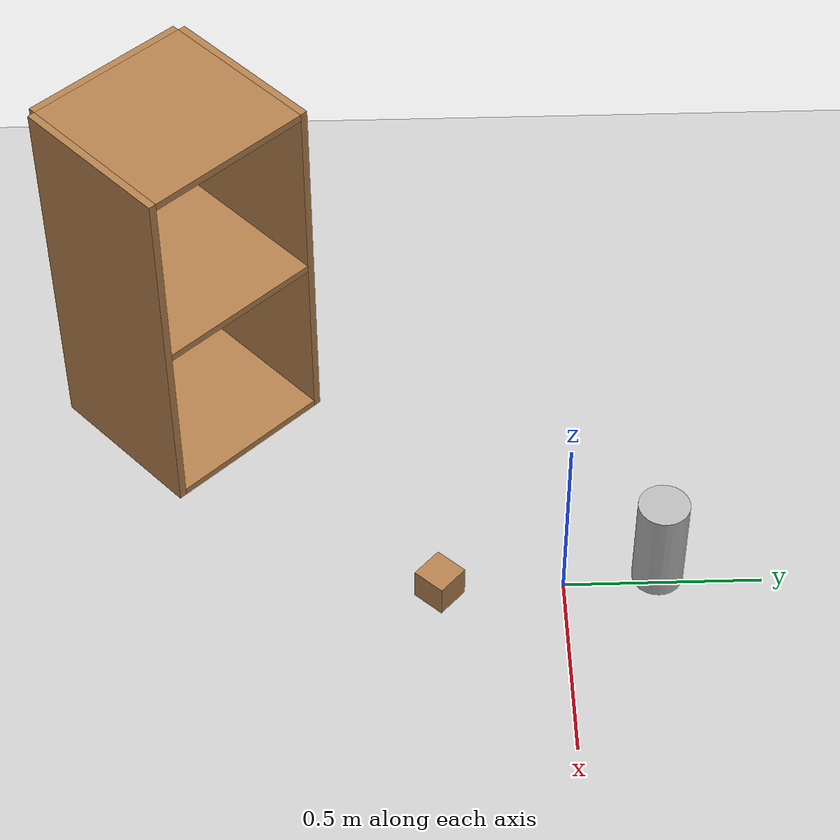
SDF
<sdf version="1.6">
 <world name="default">
  <light name="sun" type="directional">
   <pose>0 0 10 0 -0 0</pose>
   <diffuse>0.8 0.8 0.8 1</diffuse>
   <specular>0.2 0.2 0.2 1</specular>
   <attenuation>
    <range>1000</range>
    <constant>0.9</constant>
    <linear>0.01</linear>
    <quadratic>0.001</quadratic>
   </attenuation>
   <direction>-0.5 0.1 -0.9</direction>
  </light>
  <model name="ground_plane">
   <static>1</static>
   <link name="link">
    <collision name="collision">
     <geometry><plane><normal>0 0 1</normal><size>100 100</size></plane></geometry>
     <surface>
      <contact><collide_bitmask>65535</collide_bitmask></contact>
      <friction><ode><mu>100</mu><mu2>50</mu2></ode></friction>
     </surface>
    </collision>
    <visual name="visual">
     <cast_shadows>0</cast_shadows>
     <geometry><plane><normal>0 0 1</normal><size>100 100</size></plane></geometry>
     <material>
      <script><uri>file://media/materials/scripts/gazebo.material</uri><name>Gazebo/Grey</name></script>
     </material>
    </visual>
   </link>
  </model>
  <gravity>0 0 -9.8</gravity>
  <magnetic_field>6e-06 2.3e-05 -4.2e-05</magnetic_field>
  <atmosphere type="adiabatic"/>
  <physics name="default_physics" default="0" type="ode">
   <max_step_size>0.001</max_step_size>
   <real_time_factor>1</real_time_factor>
   <real_time_update_rate>1000</real_time_update_rate>
  </physics>
  <scene><ambient>0.4 0.4 0.4 1</ambient><background>0.7 0.7 0.7 1</background><shadows>1</shadows></scene>
  <audio><device>default</device></audio>
  <spherical_coordinates>
   <surface_model>EARTH_WGS84</surface_model>
   <latitude_deg>0</latitude_deg>
   <longitude_deg>0</longitude_deg>
   <elevation>0</elevation>
   <heading_deg>0</heading_deg>
  </spherical_coordinates>
  <model name="cabinet">
   <static>1</static>
   <link name="cabinet_bottom_plate">
    <inertial>
     <pose>0 0 -1 0 -0 0</pose>
     <inertia><ixx>2.05</ixx><ixy>0</ixy><ixz>0</ixz><iyy>2.05</iyy><iyz>0</iyz><izz>2.05</izz></inertia>
     <mass>25</mass>
    </inertial>
    <collision name="cabinet_bottom_plate_geom">
     <pose>0 0 0.01 0 -0 0</pose>
     <geometry><box><size>0.45 0.45 0.02</size></box></geometry>
    </collision>
    <visual name="cabinet_bottom_plate_geom_visual">
     <pose>0 0 0.01 0 -0 0</pose>
     <geometry><box><size>0.45 0.45 0.02</size></box></geometry>
     <material>
      <script><uri>file://media/materials/scripts/gazebo.material</uri><name>Gazebo/Wood</name></script>
     </material>
    </visual>
    <collision name="cabinet_bottom_plate_geom_cabinet_back_plate">
     <pose>0.235 0 0.51 0 -0 0</pose>
     <geometry><box><size>0.02 0.45 1.02</size></box></geometry>
    </collision>
    <visual name="cabinet_bottom_plate_geom_cabinet_back_plate_visual">
     <pose>0.235 0 0.51 0 -0 0</pose>
     <geometry><box><size>0.02 0.45 1.02</size></box></geometry>
     <material>
      <script><uri>file://media/materials/scripts/gazebo.material</uri><name>Gazebo/Wood</name></script>
     </material>
    </visual>
    <collision name="cabinet_bottom_plate_geom_cabinet_left_plate">
     <pose>0 0.235 0.51 0 -0 0</pose>
     <geometry><box><size>0.45 0.02 1.02</size></box></geometry>
    </collision>
    <visual name="cabinet_bottom_plate_geom_cabinet_left_plate_visual">
     <pose>0 0.235 0.51 0 -0 0</pose>
     <geometry><box><size>0.45 0.02 1.02</size></box></geometry>
     <material>
      <script><uri>file://media/materials/scripts/gazebo.material</uri><name>Gazebo/Wood</name></script>
     </material>
    </visual>
    <collision name="cabinet_bottom_plate_geom_cabinet_middle_plate">
     <pose>0 0 0.51 0 -0 0</pose>
     <geometry><box><size>0.45 0.45 0.02</size></box></geometry>
    </collision>
    <visual name="cabinet_bottom_plate_geom_cabinet_middle_plate_visual">
     <pose>0 0 0.51 0 -0 0</pose>
     <geometry><box><size>0.45 0.45 0.02</size></box></geometry>
     <material>
      <script><uri>file://media/materials/scripts/gazebo.material</uri><name>Gazebo/Wood</name></script>
     </material>
    </visual>
    <collision name="cabinet_bottom_plate_geom_cabinet_right_plate">
     <pose>0 -0.235 0.51 0 -0 0</pose>
     <geometry><box><size>0.45 0.02 1.02</size></box></geometry>
    </collision>
    <visual name="cabinet_bottom_plate_geom_cabinet_right_plate_visual">
     <pose>0 -0.235 0.51 0 -0 0</pose>
     <geometry><box><size>0.45 0.02 1.02</size></box></geometry>
     <material>
      <script><uri>file://media/materials/scripts/gazebo.material</uri><name>Gazebo/Wood</name></script>
     </material>
    </visual>
    <collision name="cabinet_bottom_plate_geom_cabinet_top_plate">
     <pose>0 0 1.01 0 -0 0</pose>
     <geometry><box><size>0.45 0.45 0.02</size></box></geometry>
    </collision>
    <visual name="cabinet_bottom_plate_geom_cabinet_top_plate_visual">
     <pose>0 0 1.01 0 -0 0</pose>
     <geometry><box><size>0.45 0.45 0.02</size></box></geometry>
     <material>
      <script><uri>file://media/materials/scripts/gazebo.material</uri><name>Gazebo/Wood</name></script>
     </material>
    </visual>
   </link>
   <pose>-0.648658 -0.941531 0 0 0 -2.40284</pose>
  </model>
  <model name="beer">
   <static>1</static>
   <link name="link">
    <pose>0 0 0.115 0 -0 0</pose>
    <inertial>
     <mass>0.39</mass>
     <inertia><ixx>0.00058</ixx><ixy>0</ixy><ixz>0</ixz><iyy>0.00058</iyy><iyz>0</iyz><izz>0.00019</izz></inertia>
    </inertial>
    <collision name="collision">
     <geometry><cylinder><radius>0.055</radius><length>0.23</length></cylinder></geometry>
    </collision>
    <visual name="visual">
     <geometry><cylinder><radius>0.055</radius><length>0.23</length></cylinder></geometry>
     <material>
      <script>
       <uri>model://beer/materials/scripts</uri>
       <uri>model://beer/materials/textures</uri>
       <name>Beer/Diffuse</name>
      </script>
     </material>
    </visual>
   </link>
   <pose>0.569726 0.130699 0.742089 3e-06 -7e-06 0.002533</pose>
  </model>
  <model name="wood_cube_7_5cm">
   <static>1</static>
   <link name="link">
    <pose>0 0 0.0375 0 -0 0</pose>
    <inertial>
     <mass>0.2249</mass>
     <inertia>
      <ixx>0.000210844</ixx>
      <ixy>0</ixy>
      <ixz>0</ixz>
      <iyy>0.000210844</iyy>
      <iyz>0</iyz>
      <izz>0.000210844</izz>
     </inertia>
    </inertial>
    <collision name="collision">
     <geometry><box><size>0.075 0.075 0.075</size></box></geometry>
     <surface>
      <contact>
       <poissons_ratio>0.347</poissons_ratio>
       <elastic_modulus>8.8e+09</elastic_modulus>
       <ode><kp>100000</kp><kd>100</kd><max_vel>100</max_vel><min_depth>0.001</min_depth></ode>
      </contact>
      <friction>
       <torsional>
        <coefficient>1</coefficient>
        <use_patch_radius>0</use_patch_radius>
        <surface_radius>0.01</surface_radius>
       </torsional>
      </friction>
     </surface>
    </collision>
    <visual name="visual">
     <geometry><box><size>0.075 0.075 0.075</size></box></geometry>
     <material>
      <script><uri>file://media/materials/scripts/gazebo.material</uri><name>Gazebo/Wood</name></script>
     </material>
    </visual>
   </link>
   <pose>0.631549 -0.308495 0.779902 -2.3189 -1.57079 -3.13915</pose>
  </model>
 </world>
</sdf>
